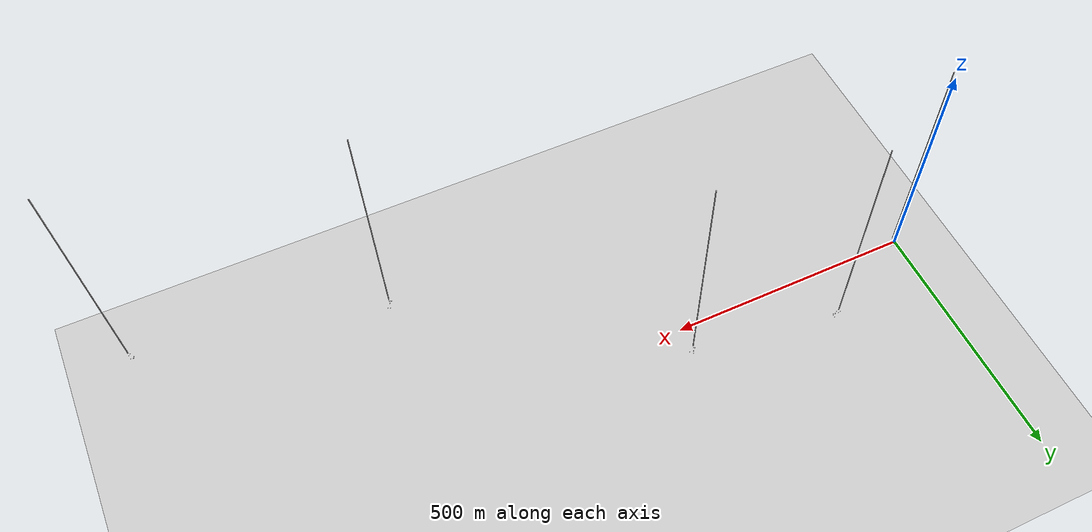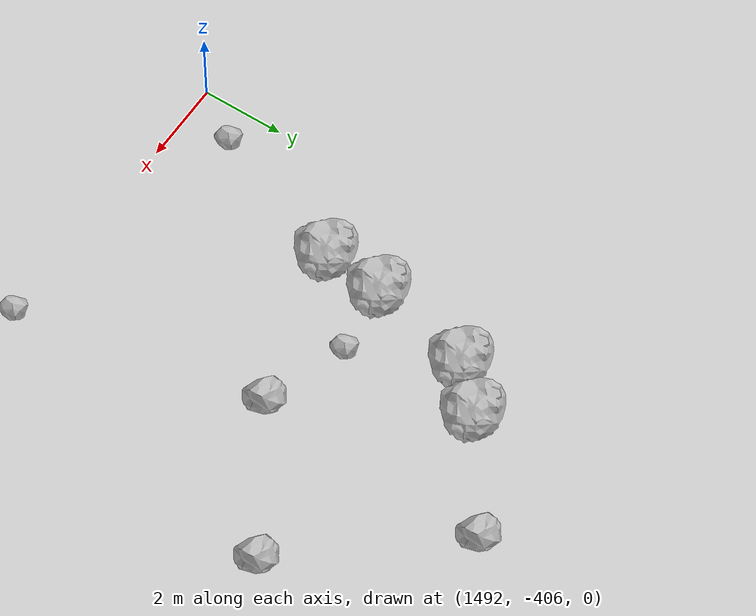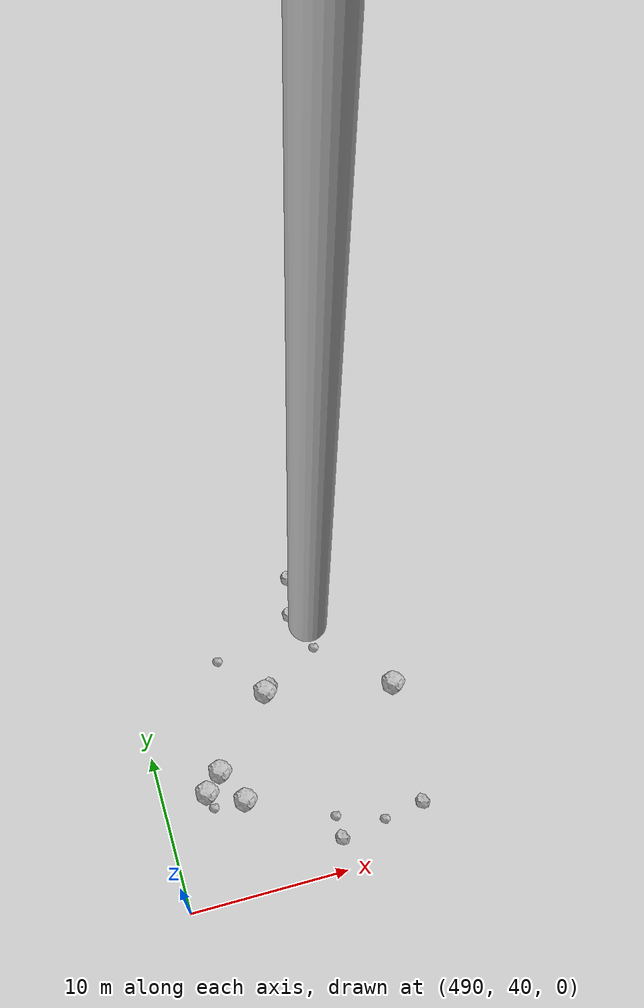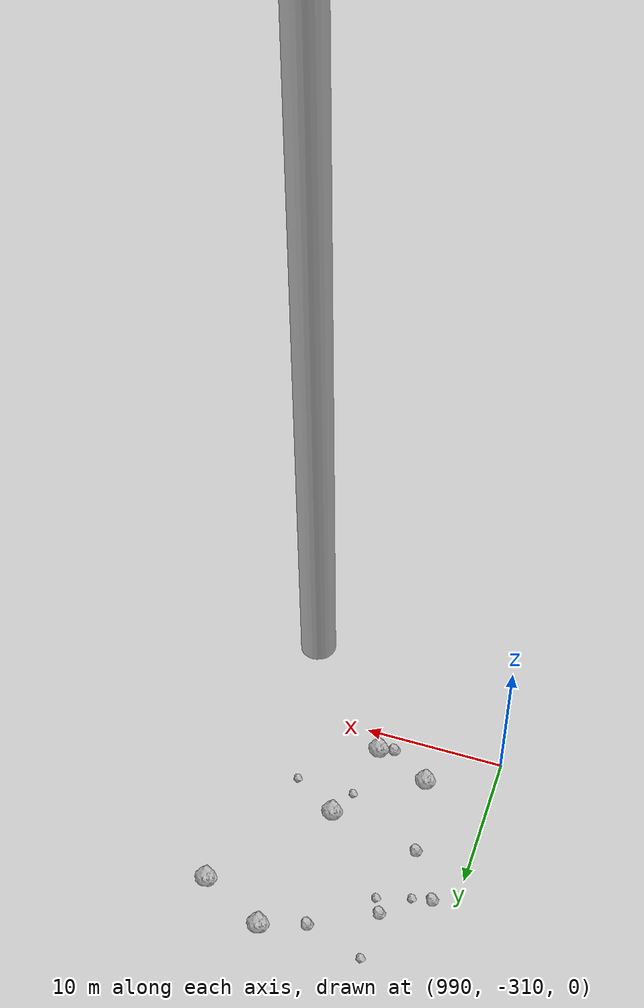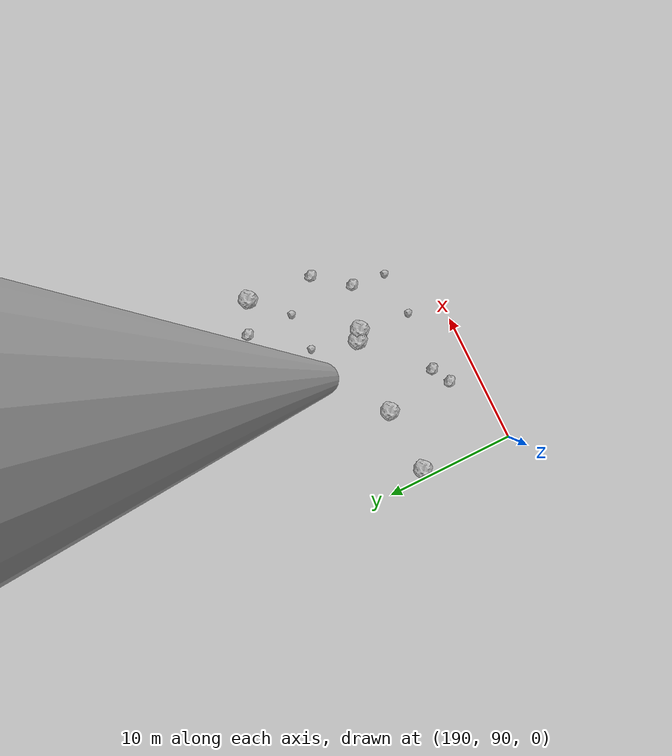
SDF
<?xml version="1.0" ?>
<sdf version="1.6">
  <world name="default">

    <include>
      <uri>model://custom_ground</uri>
    </include>

    <include>
      <uri>model://sun</uri>
    </include>

    <spherical_coordinates>
      <surface_model>EARTH_WGS84</surface_model>
      <latitude_deg>38.161479</latitude_deg>
      <longitude_deg>-122.454630</longitude_deg>
      <elevation>488.0</elevation>
      <heading_deg>90</heading_deg>
    </spherical_coordinates>

    <model name="rock1_0_0">
      <include>
        <uri>model://rock1</uri>
        <pose>4.496261329445228 7.150709480108276 0.5 0 0 0</pose>
      </include>
    </model>
    <model name="rock1_0_1">
      <include>
        <uri>model://rock1</uri>
        <pose>13.572702045369375 -0.5360082756093565 0.5 0 0 0</pose>
      </include>
    </model>
    <model name="rock1_0_2">
      <include>
        <uri>model://rock1</uri>
        <pose>6.587533908232905 5.133734686517052 0.5 0 0 0</pose>
      </include>
    </model>
    <model name="rock1_0_3">
      <include>
        <uri>model://rock1</uri>
        <pose>18.655112714000005 -0.1558460962034971 0.5 0 0 0</pose>
      </include>
    </model>
    <model name="rock1_0_4">
      <include>
        <uri>model://rock1</uri>
        <pose>6.810273554681412 3.2842728869505464 0.5 0 0 0</pose>
      </include>
    </model>
    <model name="rock2_0_0">
      <include>
        <uri>model://rock2</uri>
        <pose>5.325551058070901 -5.434007712047622 0.3 0 0 0</pose>
      </include>
    </model>
    <model name="rock2_0_1">
      <include>
        <uri>model://rock2</uri>
        <pose>7.966503399270248 -5.15113888984091 0.3 0 0 0</pose>
      </include>
    </model>
    <model name="rock2_0_2">
      <include>
        <uri>model://rock2</uri>
        <pose>17.228616931930972 1.978089288064366 0.3 0 0 0</pose>
      </include>
    </model>
    <model name="rock2_0_3">
      <include>
        <uri>model://rock2</uri>
        <pose>11.212525136037142 -5.484657256748806 0.3 0 0 0</pose>
      </include>
    </model>
    <model name="rock2_0_4">
      <include>
        <uri>model://rock2</uri>
        <pose>4.402102197235067 -8.18670266994377 0.3 0 0 0</pose>
      </include>
    </model>
    <model name="rock3_0_0">
      <include>
        <uri>model://rock3</uri>
        <pose>17.280840303470907 -5.4326055183708295 0.2 0 0 0</pose>
      </include>
    </model>
    <model name="rock3_0_1">
      <include>
        <uri>model://rock3</uri>
        <pose>14.84772005032415 -3.5928068564228344 0.2 0 0 0</pose>
      </include>
    </model>
    <model name="rock3_0_2">
      <include>
        <uri>model://rock3</uri>
        <pose>3.8548661621843094 7.802478206609411 0.2 0 0 0</pose>
      </include>
    </model>
    <model name="rock3_0_3">
      <include>
        <uri>model://rock3</uri>
        <pose>12.467749059426543 -1.4553740153346624 0.2 0 0 0</pose>
      </include>
    </model>
    <model name="rock3_0_4">
      <include>
        <uri>model://rock3</uri>
        <pose>11.332948555000186 4.986726623395786 0.2 0 0 0</pose>
      </include>
    </model>
    <model name="rock1_1_0">
      <include>
        <uri>model://rock1</uri>
        <pose>208.1971395378622 103.04033806140714 0.5 0 0 0</pose>
      </include>
    </model>
    <model name="rock1_1_1">
      <include>
        <uri>model://rock1</uri>
        <pose>195.83761973123245 97.20445995540123 0.5 0 0 0</pose>
      </include>
    </model>
    <model name="rock1_1_2">
      <include>
        <uri>model://rock1</uri>
        <pose>190.79894676049653 96.92725668644906 0.5 0 0 0</pose>
      </include>
    </model>
    <model name="rock1_1_3">
      <include>
        <uri>model://rock1</uri>
        <pose>202.37866774262284 96.49341784606169 0.5 0 0 0</pose>
      </include>
    </model>
    <model name="rock1_1_4">
      <include>
        <uri>model://rock1</uri>
        <pose>201.71620323778396 96.98242443934362 0.5 0 0 0</pose>
      </include>
    </model>
    <model name="rock2_1_0">
      <include>
        <uri>model://rock2</uri>
        <pose>195.7942381960171 92.14667512984764 0.3 0 0 0</pose>
      </include>
    </model>
    <model name="rock2_1_1">
      <include>
        <uri>model://rock2</uri>
        <pose>207.65876465750551 98.00506442366644 0.3 0 0 0</pose>
      </include>
    </model>
    <model name="rock2_1_2">
      <include>
        <uri>model://rock2</uri>
        <pose>205.80067438053223 104.25792902741287 0.3 0 0 0</pose>
      </include>
    </model>
    <model name="rock2_1_3">
      <include>
        <uri>model://rock2</uri>
        <pose>197.21659359375946 92.90205109367079 0.3 0 0 0</pose>
      </include>
    </model>
    <model name="rock2_1_4">
      <include>
        <uri>model://rock2</uri>
        <pose>205.64566439575432 95.47822435099314 0.3 0 0 0</pose>
      </include>
    </model>
    <model name="rock3_1_0">
      <include>
        <uri>model://rock3</uri>
        <pose>205.27086519115335 92.8976542341437 0.2 0 0 0</pose>
      </include>
    </model>
    <model name="rock3_1_1">
      <include>
        <uri>model://rock3</uri>
        <pose>205.66183271670377 100.58916270330812 0.2 0 0 0</pose>
      </include>
    </model>
    <model name="rock3_1_2">
      <include>
        <uri>model://rock3</uri>
        <pose>202.6400225859088 100.42771217893458 0.2 0 0 0</pose>
      </include>
    </model>
    <model name="rock3_1_3">
      <include>
        <uri>model://rock3</uri>
        <pose>208.4923862736873 103.07727894259881 0.2 0 0 0</pose>
      </include>
    </model>
    <model name="rock3_1_4">
      <include>
        <uri>model://rock3</uri>
        <pose>201.80140515231844 92.61357206063482 0.2 0 0 0</pose>
      </include>
    </model>
    <model name="rock1_2_0">
      <include>
        <uri>model://rock1</uri>
        <pose>493.9714845344747 47.99140988034514 0.5 0 0 0</pose>
      </include>
    </model>
    <model name="rock1_2_1">
      <include>
        <uri>model://rock1</uri>
        <pose>492.8556132175246 46.891524969827934 0.5 0 0 0</pose>
      </include>
    </model>
    <model name="rock1_2_2">
      <include>
        <uri>model://rock1</uri>
        <pose>506.0189944833125 50.65684008378435 0.5 0 0 0</pose>
      </include>
    </model>
    <model name="rock1_2_3">
      <include>
        <uri>model://rock1</uri>
        <pose>498.016946390346 52.231521983105964 0.5 0 0 0</pose>
      </include>
    </model>
    <model name="rock1_2_4">
      <include>
        <uri>model://rock1</uri>
        <pose>495.0417726799856 45.846734918356184 0.5 0 0 0</pose>
      </include>
    </model>
    <model name="rock2_2_0">
      <include>
        <uri>model://rock2</uri>
        <pose>498.4572486958078 52.64529183456179 0.3 0 0 0</pose>
      </include>
    </model>
    <model name="rock2_2_1">
      <include>
        <uri>model://rock2</uri>
        <pose>505.62449456966505 42.891343496737214 0.3 0 0 0</pose>
      </include>
    </model>
    <model name="rock2_2_2">
      <include>
        <uri>model://rock2</uri>
        <pose>500.19785296476095 42.01740949404565 0.3 0 0 0</pose>
      </include>
    </model>
    <model name="rock2_2_3">
      <include>
        <uri>model://rock2</uri>
        <pose>501.3776764338122 59.23908033706431 0.3 0 0 0</pose>
      </include>
    </model>
    <model name="rock2_2_4">
      <include>
        <uri>model://rock2</uri>
        <pose>500.8356897823371 56.81872287143915 0.3 0 0 0</pose>
      </include>
    </model>
    <model name="rock3_2_0">
      <include>
        <uri>model://rock3</uri>
        <pose>495.5874379989793 54.99260202294485 0.2 0 0 0</pose>
      </include>
    </model>
    <model name="rock3_2_1">
      <include>
        <uri>model://rock3</uri>
        <pose>493.010944335359 45.892366577345115 0.2 0 0 0</pose>
      </include>
    </model>
    <model name="rock3_2_2">
      <include>
        <uri>model://rock3</uri>
        <pose>503.07367395994237 42.43901696128905 0.2 0 0 0</pose>
      </include>
    </model>
    <model name="rock3_2_3">
      <include>
        <uri>model://rock3</uri>
        <pose>500.16617870029546 43.41664901110125 0.2 0 0 0</pose>
      </include>
    </model>
    <model name="rock3_2_4">
      <include>
        <uri>model://rock3</uri>
        <pose>501.7514161838317 54.28832569468632 0.2 0 0 0</pose>
      </include>
    </model>
    <model name="rock1_3_0">
      <include>
        <uri>model://rock1</uri>
        <pose>1001.8034942586314 -292.35006374670456 0.5 0 0 0</pose>
      </include>
    </model>
    <model name="rock1_3_1">
      <include>
        <uri>model://rock1</uri>
        <pose>998.694625154336 -308.35021333840575 0.5 0 0 0</pose>
      </include>
    </model>
    <model name="rock1_3_2">
      <include>
        <uri>model://rock1</uri>
        <pose>1000.1105766145722 -302.16785088724737 0.5 0 0 0</pose>
      </include>
    </model>
    <model name="rock1_3_3">
      <include>
        <uri>model://rock1</uri>
        <pose>1006.3432460883928 -294.483411261858 0.5 0 0 0</pose>
      </include>
    </model>
    <model name="rock1_3_4">
      <include>
        <uri>model://rock1</uri>
        <pose>994.7298296394791 -306.74111784408336 0.5 0 0 0</pose>
      </include>
    </model>
    <model name="rock2_3_0">
      <include>
        <uri>model://rock2</uri>
        <pose>997.6107801400951 -308.71015221545974 0.3 0 0 0</pose>
      </include>
    </model>
    <model name="rock2_3_1">
      <include>
        <uri>model://rock2</uri>
        <pose>998.782861202876 -293.43779539636796 0.3 0 0 0</pose>
      </include>
    </model>
    <model name="rock2_3_2">
      <include>
        <uri>model://rock2</uri>
        <pose>993.6991362735533 -301.0682092062449 0.3 0 0 0</pose>
      </include>
    </model>
    <model name="rock2_3_3">
      <include>
        <uri>model://rock2</uri>
        <pose>994.5944127428191 -295.7088722098128 0.3 0 0 0</pose>
      </include>
    </model>
    <model name="rock2_3_4">
      <include>
        <uri>model://rock2</uri>
        <pose>991.5771426537711 -297.7662673671558 0.3 0 0 0</pose>
      </include>
    </model>
    <model name="rock3_3_0">
      <include>
        <uri>model://rock3</uri>
        <pose>995.1269600572526 -296.8023646059875 0.2 0 0 0</pose>
      </include>
    </model>
    <model name="rock3_3_1">
      <include>
        <uri>model://rock3</uri>
        <pose>999.2106917054502 -304.24133578727043 0.2 0 0 0</pose>
      </include>
    </model>
    <model name="rock3_3_2">
      <include>
        <uri>model://rock3</uri>
        <pose>1003.335882456999 -304.25117253991704 0.2 0 0 0</pose>
      </include>
    </model>
    <model name="rock3_3_3">
      <include>
        <uri>model://rock3</uri>
        <pose>994.7226492932048 -292.3033662293289 0.2 0 0 0</pose>
      </include>
    </model>
    <model name="rock3_3_4">
      <include>
        <uri>model://rock3</uri>
        <pose>992.8780190820354 -297.5187592994645 0.2 0 0 0</pose>
      </include>
    </model>
    <model name="rock1_4_0">
      <include>
        <uri>model://rock1</uri>
        <pose>1494.312306896398 -401.22595901058463 0.5 0 0 0</pose>
      </include>
    </model>
    <model name="rock1_4_1">
      <include>
        <uri>model://rock1</uri>
        <pose>1495.928676749765 -396.36541122179653 0.5 0 0 0</pose>
      </include>
    </model>
    <model name="rock1_4_2">
      <include>
        <uri>model://rock1</uri>
        <pose>1494.4580962745931 -399.7439921986979 0.5 0 0 0</pose>
      </include>
    </model>
    <model name="rock1_4_3">
      <include>
        <uri>model://rock1</uri>
        <pose>1494.9808668753221 -397.2753469775811 0.5 0 0 0</pose>
      </include>
    </model>
    <model name="rock1_4_4">
      <include>
        <uri>model://rock1</uri>
        <pose>1502.6951982556188 -406.5411073139547 0.5 0 0 0</pose>
      </include>
    </model>
    <model name="rock2_4_0">
      <include>
        <uri>model://rock2</uri>
        <pose>1498.2031661123183 -394.6851275041793 0.3 0 0 0</pose>
      </include>
    </model>
    <model name="rock2_4_1">
      <include>
        <uri>model://rock2</uri>
        <pose>1499.7255527243349 -409.025732859352 0.3 0 0 0</pose>
      </include>
    </model>
    <model name="rock2_4_2">
      <include>
        <uri>model://rock2</uri>
        <pose>1499.7116301522567 -409.8057223581897 0.3 0 0 0</pose>
      </include>
    </model>
    <model name="rock2_4_3">
      <include>
        <uri>model://rock2</uri>
        <pose>1501.2133794580293 -398.28536638937544 0.3 0 0 0</pose>
      </include>
    </model>
    <model name="rock2_4_4">
      <include>
        <uri>model://rock2</uri>
        <pose>1497.9616159649754 -400.3041123680492 0.3 0 0 0</pose>
      </include>
    </model>
    <model name="rock3_4_0">
      <include>
        <uri>model://rock3</uri>
        <pose>1495.2359412595354 -397.38750463553987 0.2 0 0 0</pose>
      </include>
    </model>
    <model name="rock3_4_1">
      <include>
        <uri>model://rock3</uri>
        <pose>1498.941848869105 -408.2439425556916 0.2 0 0 0</pose>
      </include>
    </model>
    <model name="rock3_4_2">
      <include>
        <uri>model://rock3</uri>
        <pose>1499.121771311958 -406.2174322610149 0.2 0 0 0</pose>
      </include>
    </model>
    <model name="rock3_4_3">
      <include>
        <uri>model://rock3</uri>
        <pose>1495.931855609306 -399.6394462497038 0.2 0 0 0</pose>
      </include>
    </model>
    <model name="rock3_4_4">
      <include>
        <uri>model://rock3</uri>
        <pose>1492.8220620465347 -404.85025730647516 0.2 0 0 0</pose>
      </include>
    </model>

    <model name="cylinder_1">
      <static>true</static>
      <link name="link">
        <visual name="visual">
          <geometry>
            <cylinder>
              <radius>1</radius>
              <length>500</length>
            </cylinder>
          </geometry>
        </visual>
      </link>
      <pose>10 0 270 0 0 0</pose>
    </model>

    <model name="cylinder_2">
      <static>true</static>
      <link name="link">
        <visual name="visual">
          <geometry>
            <cylinder>
              <radius>1</radius>
              <length>500</length>
            </cylinder>
          </geometry>
        </visual>
      </link>
      <pose>200 100 270 0 0 0</pose>
    </model>

    <model name="cylinder_3">
      <static>true</static>
      <link name="link">
        <visual name="visual">
          <geometry>
            <cylinder>
              <radius>1</radius>
              <length>500</length>
            </cylinder>
          </geometry>
        </visual>
      </link>
      <pose>500 50 270 0 0 0</pose>
    </model>

    <model name="cylinder_4">
      <static>true</static>
      <link name="link">
        <visual name="visual">
          <geometry>
            <cylinder>
              <radius>1</radius>
              <length>500</length>
            </cylinder>
          </geometry>
        </visual>
      </link>
      <pose>1000 -300 270 0 0 0</pose>
    </model>

    <model name="cylinder_5">
      <static>true</static>
      <link name="link">
        <visual name="visual">
          <geometry>
            <cylinder>
              <radius>1</radius>
              <length>500</length>
            </cylinder>
          </geometry>
        </visual>
      </link>
      <pose>1500 -400 270 0 0 0</pose>
    </model>

  </world>
</sdf>

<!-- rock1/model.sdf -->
<sdf version="1.6">
  <model name="rock1">
    <static>true</static> <!-- Set to true if the model should not move -->
    <pose>0 0 0 0 0 0</pose>

    <!--z offset is 0.5 for full scale-->

    <link name="link">
      <collision name="rock1_collision">
        <geometry>
          <mesh>
            <uri>model://meshes/rock1.dae</uri>
          </mesh>
        </geometry>
      </collision>
      <visual name="rock1_visual">
        <geometry>
          <mesh>
            <uri>model://meshes/rock1.dae</uri>
          </mesh>
        </geometry>
        <material>
          <script>
            <uri>model://materials/scripts/sand_pebbles.material</uri>
            <name>custom_ground/Image</name>
          </script>
        </material>
      </visual>
    </link>
  </model>
</sdf>

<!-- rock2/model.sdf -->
<sdf version="1.6">
  <model name="rock2">
    <static>true</static> <!-- Set to true if the model should not move -->
    <pose>0 0 0 0 0 0</pose>

    <!--z offset is 0.3 for full scale-->

    <link name="link">
      <collision name="rock2_collision">
        <geometry>
          <mesh>
            <uri>model://meshes/rock2.dae</uri>
          </mesh>
        </geometry>
      </collision>
      <visual name="rock2_visual">
        <geometry>
          <mesh>
            <uri>model://meshes/rock2.dae</uri>
          </mesh>
        </geometry>
        <material>
          <script>
            <uri>model://materials/scripts/sand_pebbles.material</uri>
            <name>custom_ground/Image</name>
          </script>
        </material>
      </visual>
    </link>
  </model>
</sdf>

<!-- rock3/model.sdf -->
<sdf version="1.6">
  <model name="rock3">
    <static>true</static> <!-- Set to true if the model should not move -->
    <pose>0 0 0 0 0 0</pose>

    <!--z offset is 0.2 for full scale-->

    <link name="link">
      <collision name="rock3_collision">
        <geometry>
          <mesh>
            <uri>model://meshes/rock3.dae</uri>
          </mesh>
        </geometry>
      </collision>
      <visual name="rock3_visual">
        <geometry>
          <mesh>
            <uri>model://meshes/rock3.dae</uri>
          </mesh>
        </geometry>
        <material>
          <script>
            <uri>model://materials/scripts/sand_pebbles.material</uri>
            <name>custom_ground/Image</name>
          </script>
        </material>
      </visual>
    </link>
  </model>
</sdf>

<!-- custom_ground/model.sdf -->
<sdf version="1.6">
  <model name="custom_ground">
    <static>true</static> <!-- Ground is static and immovable -->
    <link name="ground_link">
      <pose>240 0 0 0 0 0</pose> <!-- Position and orientation relative to the world -->
      <!-- Visual Representation -->
      <visual name="ground_visual">
        <geometry>
          <plane>
            <normal>0 0 1</normal> <!-- Upward facing plane -->
            <size>500 500</size> <!-- Size of the plane -->
          </plane>
        </geometry>
        <material>
          <script>
            <uri>model://materials/scripts/sand_pebbles.material</uri>
            <name>custom_ground/Image</name>
          </script>
        </material>
      </visual>

      <!-- Collision Representation -->
      <collision name="ground_collision">
        <geometry>
          <plane>
            <normal>0 0 1</normal>
            <size>100 100</size>
          </plane>
        </geometry>
      </collision>

    </link>
  </model>
</sdf>
